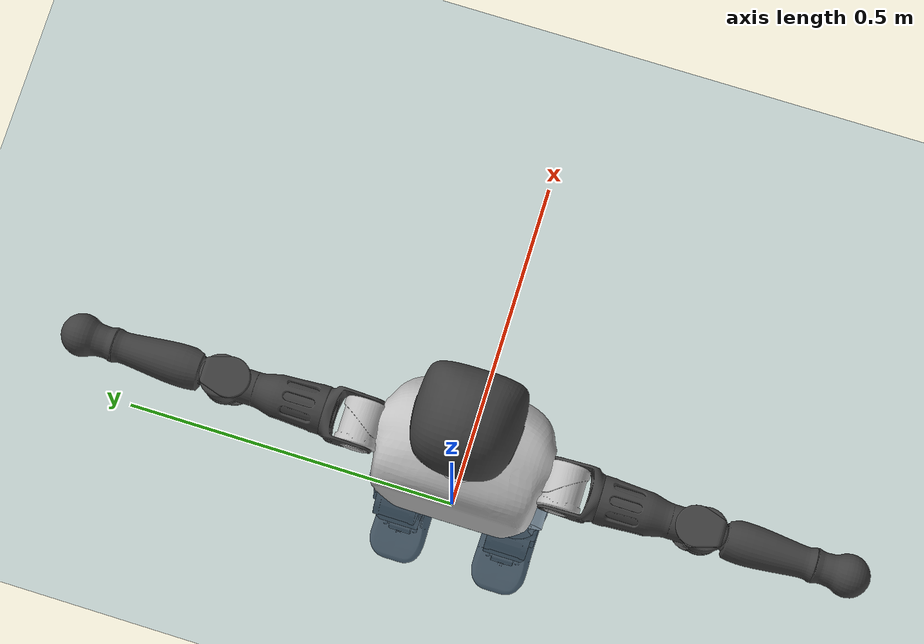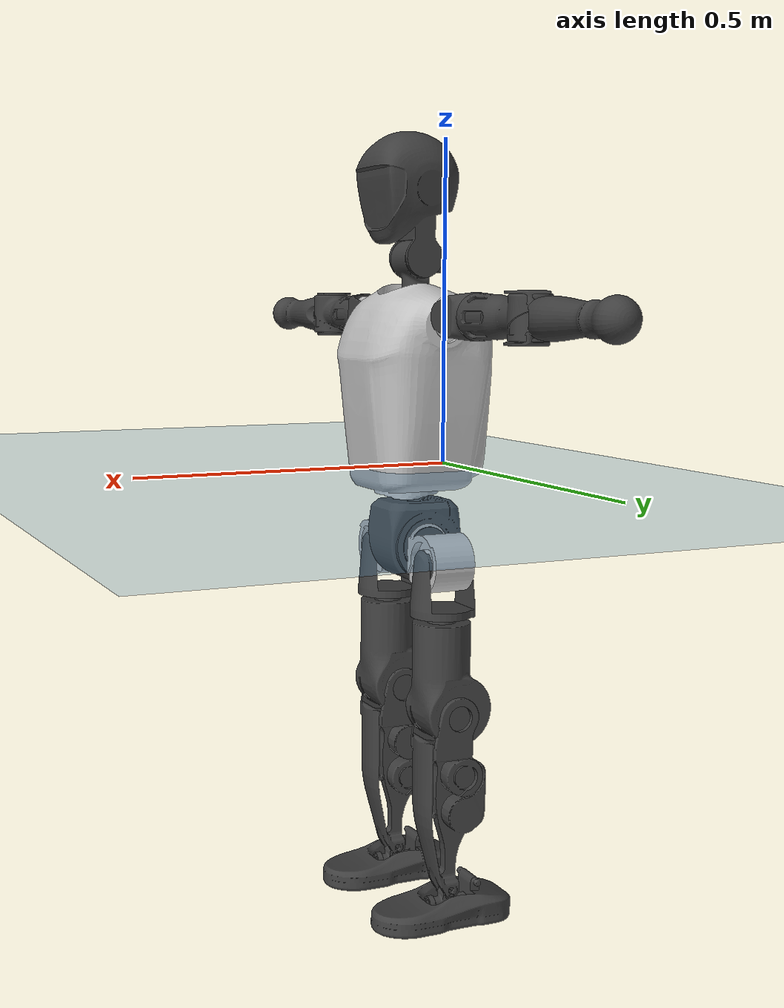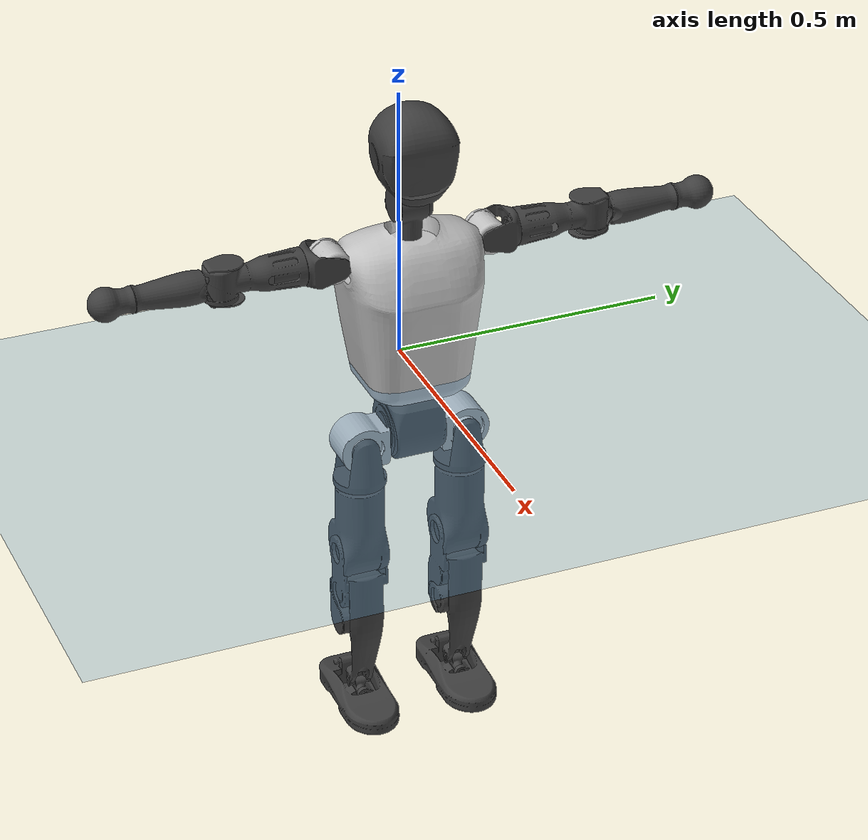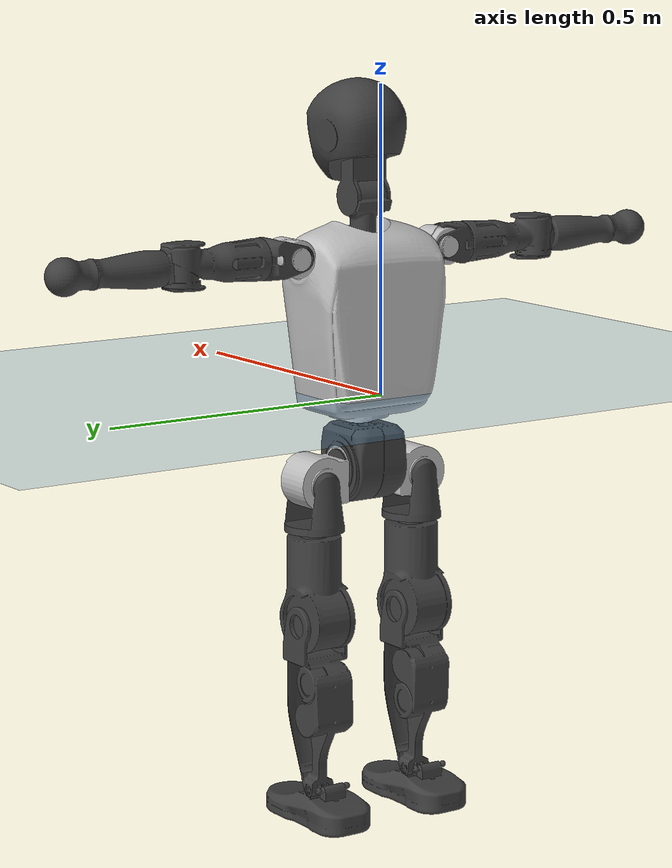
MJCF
<mujoco model="T1">
  <compiler angle="radian" assetdir="assets" balanceinertia="true" inertiafromgeom="false"/>

  <option timestep="0.005" density="1.2" viscosity="2e-05"/>

  <size nkey="1"/>

  <visual>
    <quality shadowsize="8192"/>
    <map shadowclip="0.5"/>
  </visual>

  <default>
    <default class="/">
      <joint armature="0.01" damping="0.01" frictionloss="0.1"/>
      <geom contype="0" conaffinity="0" group="1" solref="-1000 -80"/>
      <site size="0.01 0.005 0.005" group="5"/>
      <general forcelimited="true" biastype="affine" gainprm="25" biasprm="0 -25 -0.6"/>
      <default class="t1">
        <geom rgba="0.25 0.25 0.25 1"/>
        <default class="visual">
          <geom type="mesh" group="2"/>
        </default>
        <default class="collision">
          <geom group="3"/>
        </default>
        <default class="foot">
          <geom size="0.1115 0.05 0.015" type="box" condim="6" group="4" priority="1" solimp="0.015 1 0.015"/>
        </default>
        <default class="reward_collision_sphere">
          <geom group="5" rgba="1 0 0 1"/>
        </default>
      </default>
    </default>
  </default>

  <asset>
    <texture type="skybox" colorspace="auto" name="//unnamed_texture_0" builtin="gradient" rgb1="0.95 0.95 0.95" rgb2="0.95 0.95 0.95" width="100" height="600"/>
    <texture type="2d" colorspace="auto" name="texplane" builtin="checker" rgb1="0.345 0.575 0.748" rgb2="0.345 0.575 0.748" markrgb="1 1 1" width="512" height="512"/>
    <material name="MatPlane" class="/" texture="texplane" texuniform="true" texrepeat="2 2" specular="0.9"/>
    <mesh name="Trunk" class="/" file="Trunk.stl"/>
    <mesh name="H1" class="/" file="H1.stl"/>
    <mesh name="H2" class="/" file="H2.stl"/>
    <mesh name="AL1" class="/" file="AL1.stl"/>
    <mesh name="AL2" class="/" file="AL2.stl"/>
    <mesh name="AL3" class="/" file="AL3.stl"/>
    <mesh name="left_hand_link" class="/" file="left_hand_link.stl"/>
    <mesh name="AR1" class="/" file="AR1.stl"/>
    <mesh name="AR2" class="/" file="AR2.stl"/>
    <mesh name="AR3" class="/" file="AR3.stl"/>
    <mesh name="right_hand_link" class="/" file="right_hand_link.stl"/>
    <mesh name="Waist" class="/" file="Waist.stl"/>
    <mesh name="Hip_Pitch_Left" class="/" file="Hip_Pitch_Left.stl"/>
    <mesh name="Hip_Roll_Left" class="/" file="Hip_Roll_Left.stl"/>
    <mesh name="Hip_Yaw_Left" class="/" file="Hip_Yaw_Left.stl"/>
    <mesh name="Shank_Left" class="/" file="Shank_Left.stl"/>
    <mesh name="Ankle_Cross_Left" class="/" file="Ankle_Cross_Left.stl"/>
    <mesh name="left_foot_link" class="/" file="left_foot_link.stl"/>
    <mesh name="Hip_Pitch_Right" class="/" file="Hip_Pitch_Right.stl"/>
    <mesh name="Hip_Roll_Right" class="/" file="Hip_Roll_Right.stl"/>
    <mesh name="Hip_Yaw_Right" class="/" file="Hip_Yaw_Right.stl"/>
    <mesh name="Shank_Right" class="/" file="Shank_Right.stl"/>
    <mesh name="Ankle_Cross_Right" class="/" file="Ankle_Cross_Right.stl"/>
    <mesh name="right_foot_link" class="/" file="right_foot_link.stl"/>
  </asset>

  <worldbody>
    <geom name="floor" class="/" size="100 100 0.125" type="plane" group="0" material="MatPlane"/>
    <light name="toplight_shadow" class="/" pos="0 0 5" dir="0.0990148 0.0990148 -0.990148" type="directional" ambient="0.04 0.04 0.04" diffuse="0.55 0.55 0.55" specular="0.12 0.12 0.12"/>
    <light name="toplight_fill" class="/" pos="0 0 5" dir="0.0990148 0.0990148 -0.990148" type="directional" castshadow="false" ambient="0.04 0.04 0.04" diffuse="0.3 0.3 0.3" specular="0.08 0.08 0.08"/>
    <body name="trunk" childclass="t1" pos="0.000932796 -0.00076125 1.22037e-05" quat="1 0.000155952 -5.75086e-05 -0.000442805">
      <inertial pos="0.0431772 -0.000780111 0.108925" quat="0.999951 0.000456557 -0.0098354 -0.000500942" mass="8.97573" diaginertia="0.0280362 0.049654 0.0719504"/>
      <joint name="//unnamed_joint_0" type="free" armature="0" damping="0" frictionloss="0"/>
      <geom name="//unnamed_geom_1" class="visual" rgba="0.76 0.76 0.76 1" mesh="Trunk"/>
      <geom name="//unnamed_geom_2" class="collision" size="0.0686281 0.0915042 0.137256" pos="0.0472493 0 0.125408" type="box"/>
      <geom name="//unnamed_geom_3" class="reward_collision_sphere" size="0.10523" pos="0.0472493 0 0.104507"/>
      <geom name="//unnamed_geom_4" class="reward_collision_sphere" size="0.0137256" pos="0.0472493 0.0775687 0"/>
      <geom name="//unnamed_geom_5" class="reward_collision_sphere" size="0.0137256" pos="0.0472493 -0.0775687 0"/>
      <geom name="//unnamed_geom_6" class="reward_collision_sphere" size="0.0137256" pos="0.0472493 0.0976452 0.188112"/>
      <geom name="//unnamed_geom_7" class="reward_collision_sphere" size="0.0137256" pos="0.0472493 -0.0976452 0.188112"/>
      <site name="imu" pos="6.73169e-05 0.00224608 -0.00166353" size="0.00915042"/>
      <camera name="track" pos="0 -1.82514 0" quat="0.707107 0.707107 0 0" mode="trackcom"/>
      <camera name="ego_camera" pos="0.0960735 0 0.438927" quat="-0.5 -0.5 0.5 0.5"/>
      <body name="H1" pos="0.0493064 0.000560399 0.253876" quat="1 -2.62192e-05 -1.16752e-05 -1.5069e-05">
        <inertial pos="-0.00167993 -0.00239932 0.0600426" quat="0.765112 -0.0110954 0.0106464 0.643714" mass="0.342255" diaginertia="7.43919e-05 0.000142268 0.00018847"/>
        <joint name="AAHead_yaw" pos="0 0 0" axis="-0.000209593 3.31109e-05 1" range="-1.55156 1.56466" armature="0.00897951" damping="0.00998442" frictionloss="0.100051"/>
        <geom name="//unnamed_geom_8" class="visual" mesh="H1"/>
        <body name="H2" pos="-0.00111344 -0.000167713 0.0641325" quat="1 6.35418e-05 -5.17916e-05 1.48794e-05">
          <inertial pos="0.00552683 0.00105473 0.103315" quat="0.988739 0.105513 -0.076233 -0.0738258" mass="0.476313" diaginertia="0.000618144 0.00119292 0.00216401"/>
          <joint name="Head_pitch" pos="0 0 0" axis="0.00256282 -0.999996 0.00135784" range="-1.22766 0.358748" armature="0.00850336" damping="0.00619077" frictionloss="0.093122"/>
          <geom name="//unnamed_geom_9" class="visual" mesh="H2"/>
          <geom name="//unnamed_geom_10" class="collision" size="0.0732033" pos="0.00787488 0 0.114957"/>
          <geom name="//unnamed_geom_11" class="reward_collision_sphere" size="0.0823538" pos="0.0157498 0 0.104507"/>
        </body>
      </body>
      <body name="AL1" pos="0.0460286 0.0975186 0.229508" quat="1 1.89912e-05 0.000457354 -6.47994e-06">
        <inertial pos="0.00010752 0.0406505 0.00016336" quat="0.502334 0.499044 -0.49822 0.500392" mass="0.40628" diaginertia="0.000414119 0.000812305 0.000369308"/>
        <joint name="Left_Shoulder_Pitch" pos="0 0 0" axis="-0.0023346 0.999997 0.00115169" range="-3.301 1.20134" armature="0.00926226" damping="0.00733658" frictionloss="0.0894702"/>
        <geom name="//unnamed_geom_12" class="visual" rgba="0.76 0.76 0.76 1" mesh="AL1"/>
        <body name="AL2" pos="0.00065168 0.043545 0.000985814" quat="1 3.67632e-05 -5.94461e-05 -0.000136903">
          <inertial pos="0.00283853 0.0352307 -0.000212933" quat="0.488192 0.512142 -0.487182 0.511892" mass="0.122965" diaginertia="0.000122135 0.000220071 0.000220229"/>
          <joint name="Left_Shoulder_Roll" pos="0 0 0" axis="-0.999996 6.55052e-05 -0.0028293" stiffness="0.0017947" range="-1.55175 1.72735" armature="0.00916416" damping="0.00418734" frictionloss="0.0891515"/>
          <geom name="//unnamed_geom_13" class="visual" mesh="AL2"/>
          <body name="AL3" pos="0.00133915 0.0552091 -0.000172641" quat="1 0.000122215 -9.87992e-05 4.16007e-05">
            <inertial pos="-0.00186767 0.0780063 -0.00026638" quat="0.706187 0.708023 0.00181747 0.000674014" mass="0.780982" diaginertia="0.00385567 0.00798501 0.000777005"/>
            <joint name="Left_Elbow_Pitch" pos="0 0 0" axis="0.000611591 -1 2.23838e-05" range="-2.27252 2.26772" armature="0.00937922" damping="0.0091437" frictionloss="0.0901914"/>
            <geom name="//unnamed_geom_14" class="visual" mesh="AL3"/>
            <geom name="//unnamed_geom_15" class="collision" size="0.0274513 0.0686281" pos="0 0.0456286 0" quat="0.707105 0.707108 0 0" type="cylinder"/>
            <geom name="//unnamed_geom_16" class="reward_collision_sphere" size="0.0329415"/>
            <body name="left_hand_link" pos="0.00124706 0.134636 -0.000759303" quat="1 0.000260995 -0.000418739 0.000110446">
              <inertial pos="0.00019801 0.100453 7.82734e-05" quat="0.707017 0.707184 -0.00186478 -0.00377224" mass="0.248403" diaginertia="0.00244928 0.00506899 0.000261137"/>
              <joint name="Left_Elbow_Yaw" pos="0 0 0" axis="-0.00369506 -0.00381328 0.999986" range="-2.4541 0.0203711" armature="0.008932" damping="0.0128592" frictionloss="0.0919475"/>
              <geom name="//unnamed_geom_17" class="visual" mesh="left_hand_link"/>
              <geom name="//unnamed_geom_18" class="collision" size="0.0274513 0.0800661" pos="0 0.118634 0" quat="0.707105 0.707108 0 0" type="cylinder"/>
              <geom name="//unnamed_geom_19" class="reward_collision_sphere" size="0.0457521"/>
              <geom name="//unnamed_geom_20" class="reward_collision_sphere" size="0.0320265" pos="0 0.100383 0"/>
              <geom name="//unnamed_geom_21" class="reward_collision_sphere" size="0.0320265" pos="0 0.196203 0"/>
            </body>
          </body>
        </body>
      </body>
      <body name="AR1" pos="0.0439856 -0.0974112 0.229597" quat="1 -1.98484e-05 0.0004345 2.79641e-05">
        <inertial pos="-0.00125325 -0.0420488 0.00142671" quat="0.505498 0.493894 -0.503968 0.496544" mass="0.410507" diaginertia="0.000418477 0.000812379 0.000368949"/>
        <joint name="Right_Shoulder_Pitch" pos="0 0 0" axis="0.00481608 -0.999988 0.00116873" range="-1.22103 3.30588" armature="0.00876855" damping="0.00609754" frictionloss="0.092515"/>
        <geom name="//unnamed_geom_22" class="visual" rgba="0.76 0.76 0.76 1" mesh="AR1"/>
        <body name="AR2" pos="-0.000462794 -0.0411444 0.000292892" quat="1 -8.0067e-05 -0.000437617 0.000245377">
          <inertial pos="0.00363379 -0.0348897 0.00119929" quat="0.509353 0.485997 -0.514593 0.489448" mass="0.125904" diaginertia="0.000124606 0.000224069 0.000220106"/>
          <joint name="Right_Shoulder_Roll" pos="0 0 0" axis="-0.999994 -0.00355593 0.000344497" stiffness="0.00317035" range="-1.74307 1.57524" armature="0.00860959" damping="0.0054756" frictionloss="0.089214"/>
          <geom name="//unnamed_geom_23" class="visual" mesh="AR2"/>
          <body name="AR3" pos="-0.000707218 -0.0560522 0.000668349" quat="1 7.78363e-05 -6.66639e-05 0.000152181">
            <inertial pos="0.00139331 -0.0777453 0.000970519" quat="0.707695 0.706518 0.000219365 0.000497714" mass="0.783578" diaginertia="0.00384528 0.00812945 0.000784893"/>
            <joint name="Right_Elbow_Pitch" pos="0 0 0" axis="1.82545e-05 1 0.000226972" stiffness="0.000726886" range="-2.27427 2.27359" armature="0.0092178" damping="0.008174" frictionloss="0.100046"/>
            <geom name="//unnamed_geom_24" class="visual" mesh="AR3"/>
            <geom name="//unnamed_geom_25" class="collision" size="0.0274513 0.0686281" pos="0 -0.0456286 0" quat="0.707105 0.707108 0 0" type="cylinder"/>
            <geom name="//unnamed_geom_26" class="reward_collision_sphere" size="0.0329415"/>
            <body name="right_hand_link" pos="-2.96711e-05 -0.133626 -0.000515466" quat="1 1.02752e-05 -8.57401e-06 9.15928e-06">
              <inertial pos="-0.000260538 -0.100484 0.000518481" quat="0.707286 0.706927 -1.81422e-05 -0.000875173" mass="0.254595" diaginertia="0.00252033 0.00524956 0.000276497"/>
              <joint name="Right_Elbow_Yaw" pos="0 0 0" axis="0.00513912 0.00181906 0.999985" range="0.0101251 2.43582" armature="0.00959041" damping="0.00795524" frictionloss="0.0879037"/>
              <geom name="//unnamed_geom_27" class="visual" mesh="right_hand_link"/>
              <geom name="//unnamed_geom_28" class="collision" size="0.0274513 0.0800661" pos="0 -0.118634 0" quat="0.707105 0.707108 0 0" type="cylinder"/>
              <geom name="//unnamed_geom_29" class="reward_collision_sphere" size="0.0457521"/>
              <geom name="//unnamed_geom_30" class="reward_collision_sphere" size="0.0320265" pos="0 -0.100383 0"/>
              <geom name="//unnamed_geom_31" class="reward_collision_sphere" size="0.0320265" pos="0 -0.196203 0"/>
            </body>
          </body>
        </body>
      </body>
      <body name="Waist" pos="0.0484034 0.000126083 -0.121005" quat="1 7.08039e-05 -0.000347055 -0.000817741">
        <inertial pos="0.0003239 -0.00061372 0.00813952" quat="0.984267 -0.00418957 -0.176484 0.00739228" mass="1.96356" diaginertia="0.00163436 0.00340021 0.00596203"/>
        <joint name="Waist" pos="0 0 0" axis="-0.00167288 0.00212321 0.999996" range="-1.56903 1.56823" armature="0.00911913" damping="0.00884621" frictionloss="0.0918902"/>
        <geom name="//unnamed_geom_32" class="visual" mesh="Waist"/>
        <body name="Hip_Pitch_Left" pos="0.00116688 0.096101 0.00107311" quat="1 -5.75934e-05 4.18517e-07 7.73036e-05">
          <inertial pos="0.00201745 -0.00683881 -0.0190305" quat="0.975794 0.218015 0.0164536 0.00491682" mass="0.778895" diaginertia="0.000534853 0.000917976 0.00155804"/>
          <joint name="Left_Hip_Pitch" pos="0 0 0" axis="0.0020253 0.999995 -0.00252929" stiffness="0.000650644" range="-1.81771 1.56932" armature="0.00879032" damping="0.0074908" frictionloss="0.0912288"/>
          <geom name="//unnamed_geom_33" class="visual" rgba="0.76 0.76 0.76 1" mesh="Hip_Pitch_Left"/>
          <body name="Hip_Roll_Left" pos="-0.000126999 0.000716226 -0.0240122" quat="1 -6.56903e-05 0.000246515 -6.92554e-05">
            <inertial pos="0.000866607 -0.0016603 -0.0551949" quat="0.70716 -0.00624931 -0.00634265 0.706998" mass="0.294739" diaginertia="0.00052245 0.000943174 0.000657138"/>
            <joint name="Left_Hip_Roll" pos="0 0 0" axis="-0.999979 0.00641936 -7.78174e-07" range="-1.57266 0.185051" armature="0.00915156" damping="0.000881561" frictionloss="0.092234"/>
            <geom name="//unnamed_geom_34" class="visual" mesh="Hip_Roll_Left"/>
            <geom name="//unnamed_geom_35" class="reward_collision_sphere" size="0.0503273"/>
            <body name="Hip_Yaw_Left" pos="-0.000775422 0.000350934 -0.0864448" quat="1 2.05608e-05 -0.000195873 0.000227126">
              <inertial pos="-0.00495846 -0.000658923 -0.093327" quat="0.698783 -0.0348532 -0.0336607 0.713691" mass="1.66849" diaginertia="0.00780734 0.0156673 0.00317397"/>
              <joint name="Left_Hip_Yaw" pos="0 0 0" axis="-4.53491e-05 -0.000129495 -1" range="-1.03953 0.995756" armature="0.0090799" damping="0.00741411" frictionloss="0.0923805"/>
              <geom name="//unnamed_geom_36" class="visual" mesh="Hip_Yaw_Left"/>
              <geom name="//unnamed_geom_37" class="collision" size="0.0457521 0.0732033" type="cylinder"/>
              <body name="Shank_Left" pos="-0.012067 -9.21952e-06 -0.143405" quat="1 -8.37133e-05 3.06169e-05 -1.57667e-05">
                <inertial pos="-0.00481073 0.000191598 -0.129914" quat="0.997818 0.00170385 -0.0229273 0.0618867" mass="1.33075" diaginertia="0.0104691 0.021426 0.00230895"/>
                <joint name="Left_Knee_Pitch" pos="0 0 0" axis="-0.00545483 0.999981 -0.00294966" range="-0.00324019 2.35019" armature="0.00903459" damping="0.00834096" frictionloss="0.0916339"/>
                <geom name="//unnamed_geom_38" class="visual" mesh="Shank_Left"/>
                <geom name="//unnamed_geom_39" class="collision" size="0.0457521 0.0686281" pos="0 0 -0.125408" type="cylinder"/>
                <geom name="//unnamed_geom_40" class="reward_collision_sphere" size="0.0594777"/>
                <body name="Ankle_Cross_Left" pos="0.000369854 -0.000337759 -0.291643" quat="1 0.000190923 -0.00039952 0.000199941">
                  <inertial pos="-0.00464857 0.000333817 -0.00922385" quat="0.443531 0.551697 0.550788 0.442203" mass="0.0563845" diaginertia="8.87647e-06 1.62791e-05 1.39922e-05"/>
                  <joint name="Left_Ankle_Pitch" pos="0 0 0" axis="-0.00221175 0.999997 0.000678853" range="-0.867789 0.349311" armature="0.00996075" damping="0.0125597" frictionloss="0.0912602"/>
                  <geom name="//unnamed_geom_41" class="visual" mesh="Ankle_Cross_Left"/>
                  <body name="left_foot_link" pos="0.000407438 -0.000181581 -0.0120618" quat="1 -0.000698975 0.000151309 -0.000546967">
                    <inertial pos="-0.000272365 0.000916651 -0.00995874" quat="0.000172937 0.619029 0.00516313 0.785351" mass="0.533504" diaginertia="0.000843097 0.00152272 0.00276149"/>
                    <joint name="Left_Ankle_Roll" pos="0 0 0" axis="-0.999934 0.000970383 0.0114512" range="-0.450682 0.431669" armature="0.00927879" damping="0.00559739" frictionloss="0.0920406"/>
                    <geom name="//unnamed_geom_42" class="visual" mesh="left_foot_link"/>
                    <geom name="left_foot" class="foot" size="0.104716 0.0450633 0.0136802" pos="0.00787488 0 -0.015676"/>
                    <geom name="//unnamed_geom_44" class="reward_collision_sphere" size="0.0475822" pos="0.00787488 0 -0.015676"/>
                    <geom name="//unnamed_geom_45" class="reward_collision_sphere" size="0.0274513" pos="0.0748113 -0.0209892 -0.015676"/>
                    <geom name="//unnamed_geom_46" class="reward_collision_sphere" size="0.0274513" pos="-0.0551241 -0.0209892 -0.015676"/>
                    <site name="left_foot" class="foot" pos="0.00787488 0 -0.015676" size="0.00915042"/>
                  </body>
                </body>
              </body>
            </body>
          </body>
        </body>
        <body name="Hip_Pitch_Right" pos="0.0014682 -0.0959591 -0.000974383" quat="1 -3.90556e-05 6.88986e-06 5.81888e-05">
          <inertial pos="-0.00102232 0.00596363 -0.0180211" quat="0.973291 -0.228967 0.0164496 -0.00293892" mass="0.779739" diaginertia="0.000546698 0.000926776 0.00153864"/>
          <joint name="Right_Hip_Pitch" pos="0 0 0" axis="-6.59587e-05 -1 0.000289541" range="-1.569 1.80821" armature="0.00956101" damping="2.51994e-05" frictionloss="0.0871679"/>
          <geom name="//unnamed_geom_47" class="visual" rgba="0.76 0.76 0.76 1" mesh="Hip_Pitch_Right"/>
          <body name="Hip_Roll_Right" pos="-0.000674823 0.000474525 -0.0220417" quat="1 9.58966e-05 3.61388e-05 5.48679e-05">
            <inertial pos="0.00142432 -0.000816916 -0.05619" quat="0.705437 -0.00341993 -0.00668006 0.708733" mass="0.289627" diaginertia="0.000534154 0.000960935 0.000639324"/>
            <joint name="Right_Hip_Roll" pos="0 0 0" axis="-0.999995 0.000526819 -0.00321337" range="-0.210421 1.56705" armature="0.00920475" damping="0.00433984" frictionloss="0.0902688"/>
            <geom name="//unnamed_geom_48" class="visual" mesh="Hip_Roll_Right"/>
            <geom name="//unnamed_geom_49" class="reward_collision_sphere" size="0.0503273"/>
            <body name="Hip_Yaw_Right" pos="-0.00112923 -0.000374512 -0.0865227" quat="1 -4.77139e-05 1.12138e-05 6.42416e-05">
              <inertial pos="-0.00577744 -0.000182119 -0.0939556" quat="0.715552 -0.0311388 -0.0336366 0.697054" mass="1.65404" diaginertia="0.00791585 0.0160066 0.00328671"/>
              <joint name="Right_Hip_Yaw" pos="0 0 0" axis="0.0020782 -0.00142891 -0.999997" stiffness="0.004143" range="-0.998931 1.00617" armature="0.00934493" damping="0.017154" frictionloss="0.0951032"/>
              <geom name="//unnamed_geom_50" class="visual" mesh="Hip_Yaw_Right"/>
              <geom name="//unnamed_geom_51" class="collision" size="0.0457521 0.0732033" type="cylinder"/>
              <body name="Shank_Right" pos="-0.0116058 -7.94099e-05 -0.141571" quat="1 -0.000130341 0.000270844 9.9031e-06">
                <inertial pos="-0.00527889 -0.000680952 -0.128495" quat="0.999257 -0.000624311 -0.0234133 -0.0305972" mass="1.38783" diaginertia="0.010793 0.0221696 0.00242577"/>
                <joint name="Right_Knee_Pitch" pos="0 0 0" axis="0.00322058 -0.999993 0.00184321" range="-2.36247 -0.00893218" armature="0.00926377" damping="0.00446798" frictionloss="0.0892108"/>
                <geom name="//unnamed_geom_52" class="visual" mesh="Shank_Right"/>
                <geom name="//unnamed_geom_53" class="collision" size="0.0457521 0.0686281" pos="0 0 -0.125408" type="cylinder"/>
                <geom name="//unnamed_geom_54" class="reward_collision_sphere" size="0.0594777"/>
                <body name="Ankle_Cross_Right" pos="0.000963502 -0.000948709 -0.292949" quat="1 -1.20215e-05 1.02573e-05 -6.59994e-06">
                  <inertial pos="-0.00268735 -0.000568487 -0.0083166" quat="0.442806 0.551127 0.551279 0.443028" mass="0.0562353" diaginertia="8.88095e-06 1.63041e-05 1.42943e-05"/>
                  <joint name="Right_Ankle_Pitch" pos="0 0 0" axis="-0.000221531 -0.999994 -0.00334408" range="-0.361404 0.866948" armature="0.00913609" damping="0.00308047" frictionloss="0.0924883"/>
                  <geom name="//unnamed_geom_55" class="visual" mesh="Ankle_Cross_Right"/>
                  <body name="right_foot_link" pos="-0.000598968 -0.000405673 -0.0100005" quat="1 -5.35865e-06 2.03868e-05 7.92794e-06">
                    <inertial pos="-7.3282e-05 0.000550696 -0.0112644" quat="0.00218488 0.621667 0.00257552 0.783274" mass="0.518528" diaginertia="0.000802671 0.0014775 0.00260992"/>
                    <joint name="Right_Ankle_Roll" pos="0 0 0" axis="-0.999991 -0.00239976 0.00360505" stiffness="5.72733e-05" range="-0.44684 0.466113" armature="0.00821997" damping="0" frictionloss="0.0908086"/>
                    <geom name="//unnamed_geom_56" class="visual" mesh="right_foot_link"/>
                    <geom name="right_foot" class="foot" size="0.0982116 0.0453783 0.0141067" pos="0.00787488 0 -0.015676"/>
                    <geom name="//unnamed_geom_58" class="reward_collision_sphere" size="0.0366017"/>
                    <geom name="//unnamed_geom_59" class="reward_collision_sphere" size="0.0274513" pos="0.00787488 0 -0.015676"/>
                    <geom name="//unnamed_geom_60" class="reward_collision_sphere" size="0.0274513" pos="0.0748113 0.0209892 -0.015676"/>
                    <geom name="//unnamed_geom_61" class="reward_collision_sphere" size="0.0274513" pos="-0.0551241 0.0209892 -0.015676"/>
                    <site name="right_foot" class="foot" pos="0.00787488 0 -0.015676" size="0.00915042"/>
                  </body>
                </body>
              </body>
            </body>
          </body>
        </body>
      </body>
    </body>
  </worldbody>

  <contact>
    <pair class="/" geom1="floor" geom2="left_foot" name="//unnamed_contact_0"/>
    <pair class="/" geom1="floor" geom2="right_foot" name="//unnamed_contact_1"/>
  </contact>

  <actuator>
    <general name="AAHead_yaw" class="/" joint="AAHead_yaw" forcerange="-6.36562 6.36562" gainprm="23.4151" biasprm="0 -23.4151 -0.525982"/>
    <general name="Head_pitch" class="/" joint="Head_pitch" forcerange="-6.33028 6.33028" gainprm="23.4151" biasprm="0 -23.4151 -0.525982"/>
    <general name="Left_Shoulder_Pitch" class="/" joint="Left_Shoulder_Pitch" forcerange="-15.2494 15.2494" gainprm="23.4151" biasprm="0 -23.4151 -0.525982"/>
    <general name="Left_Shoulder_Roll" class="/" joint="Left_Shoulder_Roll" forcerange="-15.8103 15.8103" gainprm="23.4151" biasprm="0 -23.4151 -0.525982"/>
    <general name="Left_Elbow_Pitch" class="/" joint="Left_Elbow_Pitch" forcerange="-16.2977 16.2977" gainprm="23.4151" biasprm="0 -23.4151 -0.525982"/>
    <general name="Left_Elbow_Yaw" class="/" joint="Left_Elbow_Yaw" forcerange="-16.6186 16.6186" gainprm="23.4151" biasprm="0 -23.4151 -0.525982"/>
    <general name="Right_Shoulder_Pitch" class="/" joint="Right_Shoulder_Pitch" forcerange="-16.4518 16.4518" gainprm="23.4151" biasprm="0 -23.4151 -0.525982"/>
    <general name="Right_Shoulder_Roll" class="/" joint="Right_Shoulder_Roll" forcerange="-16.4005 16.4005" gainprm="23.4151" biasprm="0 -23.4151 -0.525982"/>
    <general name="Right_Elbow_Pitch" class="/" joint="Right_Elbow_Pitch" forcerange="-16.66 16.66" gainprm="23.4151" biasprm="0 -23.4151 -0.525982"/>
    <general name="Right_Elbow_Yaw" class="/" joint="Right_Elbow_Yaw" forcerange="-16.674 16.674" gainprm="23.4151" biasprm="0 -23.4151 -0.525982"/>
    <general name="Waist" class="/" joint="Waist" forcerange="-27.1377 27.1377" gainprm="23.4151" biasprm="0 -23.4151 -0.525982"/>
    <general name="Left_Hip_Pitch" class="/" joint="Left_Hip_Pitch" forcerange="-41.9412 41.9412" gainprm="23.4151" biasprm="0 -23.4151 -0.525982"/>
    <general name="Left_Hip_Roll" class="/" joint="Left_Hip_Roll" forcerange="-26.5097 26.5097" gainprm="23.4151" biasprm="0 -23.4151 -0.525982"/>
    <general name="Left_Hip_Yaw" class="/" joint="Left_Hip_Yaw" forcerange="-28.255 28.255" gainprm="23.4151" biasprm="0 -23.4151 -0.525982"/>
    <general name="Left_Knee_Pitch" class="/" joint="Left_Knee_Pitch" forcerange="-55.1822 55.1822" gainprm="23.4151" biasprm="0 -23.4151 -0.525982"/>
    <general name="Left_Ankle_Pitch" class="/" joint="Left_Ankle_Pitch" forcerange="-18.3054 18.3054" gainprm="23.4151" biasprm="0 -23.4151 -0.525982"/>
    <general name="Left_Ankle_Roll" class="/" joint="Left_Ankle_Roll" forcerange="-13.3648 13.3648" gainprm="23.4151" biasprm="0 -23.4151 -0.525982"/>
    <general name="Right_Hip_Pitch" class="/" joint="Right_Hip_Pitch" forcerange="-42.6988 42.6988" gainprm="23.4151" biasprm="0 -23.4151 -0.525982"/>
    <general name="Right_Hip_Roll" class="/" joint="Right_Hip_Roll" forcerange="-29.2095 29.2095" gainprm="23.4151" biasprm="0 -23.4151 -0.525982"/>
    <general name="Right_Hip_Yaw" class="/" joint="Right_Hip_Yaw" forcerange="-27.4022 27.4022" gainprm="23.4151" biasprm="0 -23.4151 -0.525982"/>
    <general name="Right_Knee_Pitch" class="/" joint="Right_Knee_Pitch" forcerange="-53.0167 53.0167" gainprm="23.4151" biasprm="0 -23.4151 -0.525982"/>
    <general name="Right_Ankle_Pitch" class="/" joint="Right_Ankle_Pitch" forcerange="-17.1792 17.1792" gainprm="23.4151" biasprm="0 -23.4151 -0.525982"/>
    <general name="Right_Ankle_Roll" class="/" joint="Right_Ankle_Roll" forcerange="-13.9162 13.9162" gainprm="23.4151" biasprm="0 -23.4151 -0.525982"/>
  </actuator>

  <sensor>
    <gyro site="imu" name="imu_angular_velocity"/>
    <velocimeter site="imu" name="imu_linear_velocity"/>
    <framelinvel objtype="site" objname="left_foot" name="left_foot_global_linear_velocity"/>
    <framelinvel objtype="site" objname="right_foot" name="right_foot_global_linear_velocity"/>
  </sensor>

  <keyframe>
    <key name="home" qpos="0 0 0.6385 1 0 0 0 0 0 0 1.4 0 -0.4 0 -1.4 0 0.4 0 -0.4 0 0 0.8 -0.4 0 0.4 0 0 -0.8 0.4 0"/>
  </keyframe>
</mujoco>
